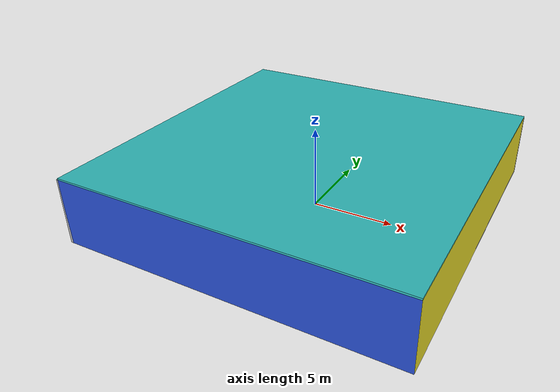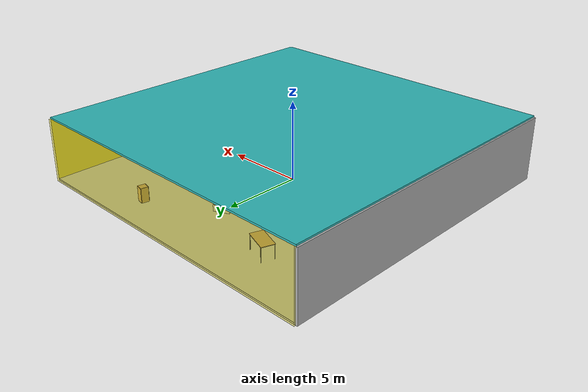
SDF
<sdf version="1.4">
 <world name="default">
  <physics type="ode">
   <max_step_size>0.001</max_step_size>
   <real_time_factor>1</real_time_factor>
   <real_time_update_rate>1000</real_time_update_rate>
   <gravity>0 0 -9.8</gravity>
  </physics>
  <scene><ambient>0.4 0.4 0.4 1</ambient><background>0.7 0.7 0.7 1</background><shadows>1</shadows></scene>
  <model name="Surrounding">
   <static>1</static>
   <link name="Ceiling">
    <collision name="Ceiling_Collision"><geometry><box><size>20 20 0.1</size></box></geometry></collision>
    <visual name="Ceiling_Visual">
     <geometry><box><size>20 20 0.1</size></box></geometry>
     <material>
      <script><uri>file://media/materials/scripts/gazebo.material</uri><name>Gazebo/Turquoise</name></script>
     </material>
    </visual>
    <pose>0 0 4.05 0 0 0</pose>
   </link>
   <link name="Wall_South">
    <collision name="Wall_South_Collision">
     <geometry><box><size>20 0 4</size></box></geometry>
     <pose>0 0 2 0 -0 0</pose>
    </collision>
    <visual name="Wall_South_Visual">
     <pose>0 0 2 0 -0 0</pose>
     <geometry><box><size>20 0 4</size></box></geometry>
     <material>
      <script><uri>file://media/materials/scripts/gazebo.material</uri><name>Gazebo/Blue</name></script>
     </material>
    </visual>
    <velocity_decay><linear>0</linear><angular>0</angular></velocity_decay>
    <pose>0 -10 0 0 -0 0</pose>
   </link>
   <link name="Wall_East">
    <collision name="Wall_21_Collision">
     <geometry><box><size>20 0 4</size></box></geometry>
     <pose>0 0 2 0 -0 0</pose>
    </collision>
    <visual name="Wall_21_Visual">
     <pose>0 0 2 0 -0 0</pose>
     <geometry><box><size>20 0 4</size></box></geometry>
     <material>
      <script><uri>file://media/materials/scripts/gazebo.material</uri><name>Gazebo/Yellow</name></script>
     </material>
    </visual>
    <velocity_decay><linear>0</linear><angular>0</angular></velocity_decay>
    <pose>10 0 0 0 -0 1.5708</pose>
   </link>
   <link name="Wall_North">
    <collision name="Wall_22_Collision">
     <geometry><box><size>20 0.2 4</size></box></geometry>
     <pose>0 0 2 0 -0 0</pose>
    </collision>
    <visual name="Wall_22_Visual">
     <pose>0 0 2 0 -0 0</pose>
     <geometry><box><size>20 0.2 4</size></box></geometry>
     <material>
      <script>
       <uri>file://media/materials/scripts/gazebo.material</uri>
       <name>Gazebo/YellowTransparent</name>
      </script>
     </material>
    </visual>
    <velocity_decay><linear>0</linear><angular>0</angular></velocity_decay>
    <pose>0 10 0 0 -0 0</pose>
   </link>
   <link name="Wall_West">
    <collision name="Wall_23_Collision">
     <geometry><box><size>20 0.2 4</size></box></geometry>
     <pose>0 0 2 0 -0 0</pose>
    </collision>
    <visual name="Wall_23_Visual">
     <pose>0 0 2 0 -0 0</pose>
     <geometry><box><size>20 0.2 4</size></box></geometry>
     <material>
      <script><uri>file://media/materials/scripts/gazebo.material</uri><name>Gazebo/Pioneer2Body</name></script>
     </material>
    </visual>
    <velocity_decay><linear>0</linear><angular>0</angular></velocity_decay>
    <pose>-10 0 0 0 0 -1.5708</pose>
   </link>
   <link name="Ground_link">
    <collision name="collision">
     <pose>0 0 .05 0 -0 0</pose>
     <geometry><box><size>20 20 0.1</size></box></geometry>
    </collision>
    <visual name="visual">
     <pose>0 0 .05 0 -0 0</pose>
     <geometry><box><size>20 20 0.1</size></box></geometry>
     <material>
      <script><uri>file://media/materials/scripts/gazebo.material</uri><name>Gazebo/PioneerBody</name></script>
     </material>
    </visual>
   </link>
   <static>1</static>
  </model>
  <spherical_coordinates>
   <surface_model>EARTH_WGS84</surface_model>
   <latitude_deg>0</latitude_deg>
   <longitude_deg>0</longitude_deg>
   <elevation>0</elevation>
   <heading_deg>0</heading_deg>
  </spherical_coordinates>
  <light name="lightball_0" type="diffuse">
   <diffuse>0.8 0.8 0.8 1</diffuse>
   <specular>0.2 0.2 0.2 1</specular>
   <attenuation>
    <range>100</range>
    <constant>0.7</constant>
    <linear>0.01</linear>
    <quadratic>0.001</quadratic>
   </attenuation>
   <direction>-0.5 0.1 -0.9</direction>
   <pose>-3.90829510214 8.8929952788 0.684272395411 0 0 0</pose>
  </light>
  <light name="lightball_1" type="diffuse">
   <diffuse>0.8 0.8 0.8 1</diffuse>
   <specular>0.2 0.2 0.2 1</specular>
   <attenuation>
    <range>100</range>
    <constant>0.7</constant>
    <linear>0.01</linear>
    <quadratic>0.001</quadratic>
   </attenuation>
   <direction>-0.5 0.1 -0.9</direction>
   <pose>5.52592560138 7.43412039257 3.45479604994 0 0 0</pose>
  </light>
  <light name="lightball_2" type="diffuse">
   <diffuse>0.8 0.8 0.8 1</diffuse>
   <specular>0.2 0.2 0.2 1</specular>
   <attenuation>
    <range>100</range>
    <constant>0.7</constant>
    <linear>0.01</linear>
    <quadratic>0.001</quadratic>
   </attenuation>
   <direction>-0.5 0.1 -0.9</direction>
   <pose>2.57272350137 -1.21020157831 3.55098699392 0 0 0</pose>
  </light>
  <light name="lightball_3" type="diffuse">
   <diffuse>0.8 0.8 0.8 1</diffuse>
   <specular>0.2 0.2 0.2 1</specular>
   <attenuation>
    <range>100</range>
    <constant>0.7</constant>
    <linear>0.01</linear>
    <quadratic>0.001</quadratic>
   </attenuation>
   <direction>-0.5 0.1 -0.9</direction>
   <pose>8.82484682886 -3.92666373107 0.696120581646 0 0 0</pose>
  </light>
  <light name="lightball_4" type="diffuse">
   <diffuse>0.8 0.8 0.8 1</diffuse>
   <specular>0.2 0.2 0.2 1</specular>
   <attenuation>
    <range>100</range>
    <constant>0.7</constant>
    <linear>0.01</linear>
    <quadratic>0.001</quadratic>
   </attenuation>
   <direction>-0.5 0.1 -0.9</direction>
   <pose>9.97863925174 -6.83643784371 3.87731429779 0 0 0</pose>
  </light>
  <light name="lightball_5" type="diffuse">
   <diffuse>0.8 0.8 0.8 1</diffuse>
   <specular>0.2 0.2 0.2 1</specular>
   <attenuation>
    <range>100</range>
    <constant>0.7</constant>
    <linear>0.01</linear>
    <quadratic>0.001</quadratic>
   </attenuation>
   <direction>-0.5 0.1 -0.9</direction>
   <pose>-9.64819114164 0.40913215402 1.44161468347 0 0 0</pose>
  </light>
  <light name="lightball_6" type="diffuse">
   <diffuse>0.8 0.8 0.8 1</diffuse>
   <specular>0.2 0.2 0.2 1</specular>
   <attenuation>
    <range>100</range>
    <constant>0.7</constant>
    <linear>0.01</linear>
    <quadratic>0.001</quadratic>
   </attenuation>
   <direction>-0.5 0.1 -0.9</direction>
   <pose>-3.61638931924 -8.80670254552 2.42357728295 0 0 0</pose>
  </light>
  <light name="lightball_7" type="diffuse">
   <diffuse>0.8 0.8 0.8 1</diffuse>
   <specular>0.2 0.2 0.2 1</specular>
   <attenuation>
    <range>100</range>
    <constant>0.7</constant>
    <linear>0.01</linear>
    <quadratic>0.001</quadratic>
   </attenuation>
   <direction>-0.5 0.1 -0.9</direction>
   <pose>6.20510861408 7.3120661506 1.44758431289 0 0 0</pose>
  </light>
  <light name="lightball_8" type="diffuse">
   <diffuse>0.8 0.8 0.8 1</diffuse>
   <specular>0.2 0.2 0.2 1</specular>
   <attenuation>
    <range>100</range>
    <constant>0.7</constant>
    <linear>0.01</linear>
    <quadratic>0.001</quadratic>
   </attenuation>
   <direction>-0.5 0.1 -0.9</direction>
   <pose>-0.418536883477 0.0168958895984 1.15679683972 0 0 0</pose>
  </light>
  <light name="lightball_9" type="diffuse">
   <diffuse>0.8 0.8 0.8 1</diffuse>
   <specular>0.2 0.2 0.2 1</specular>
   <attenuation>
    <range>100</range>
    <constant>0.7</constant>
    <linear>0.01</linear>
    <quadratic>0.001</quadratic>
   </attenuation>
   <direction>-0.5 0.1 -0.9</direction>
   <pose>7.68609952293 2.04201240585 1.67237838851 0 0 0</pose>
  </light>
  <light name="lightball_10" type="diffuse">
   <diffuse>0.8 0.8 0.8 1</diffuse>
   <specular>0.2 0.2 0.2 1</specular>
   <attenuation>
    <range>100</range>
    <constant>0.7</constant>
    <linear>0.01</linear>
    <quadratic>0.001</quadratic>
   </attenuation>
   <direction>-0.5 0.1 -0.9</direction>
   <pose>-7.11574685512 6.60635892674 3.28487925718 0 0 0</pose>
  </light>
  <light name="lightball_11" type="diffuse">
   <diffuse>0.8 0.8 0.8 1</diffuse>
   <specular>0.2 0.2 0.2 1</specular>
   <attenuation>
    <range>100</range>
    <constant>0.7</constant>
    <linear>0.01</linear>
    <quadratic>0.001</quadratic>
   </attenuation>
   <direction>-0.5 0.1 -0.9</direction>
   <pose>-5.45135656263 -7.5939800554 1.77198188001 0 0 0</pose>
  </light>
  <light name="lightball_12" type="diffuse">
   <diffuse>0.8 0.8 0.8 1</diffuse>
   <specular>0.2 0.2 0.2 1</specular>
   <attenuation>
    <range>100</range>
    <constant>0.7</constant>
    <linear>0.01</linear>
    <quadratic>0.001</quadratic>
   </attenuation>
   <direction>-0.5 0.1 -0.9</direction>
   <pose>5.10940640322 6.84204527901 2.95977044408 0 0 0</pose>
  </light>
  <include>
   <uri>model://textured_shapes</uri>
   <pose>-7.41090330089 -7.36298597941 0 0 0 1.26772671381</pose>
  </include>
  <include>
   <uri>model://textured_shapes</uri>
   <pose>-5.03284204693 -6.98157300866 0 0 0 1.76315947266</pose>
  </include>
  <include><uri>model://table</uri><pose>-4.9246086107 7.18588763209 0 0 0 2.79496801185</pose></include>
  <include>
   <uri>model://construction_cone</uri>
   <pose>-1.80724069616 -5.20729883927 0 0 0 1.88871803627</pose>
  </include>
  <include>
   <uri>model://textured_shapes</uri>
   <pose>-1.34356741437 4.76624621462 0 0 0 2.00066953767</pose>
  </include>
  <include><uri>model://cabinet</uri><pose>4.01083511067 8.02927551428 0 0 0 2.93722980011</pose></include>
 </world>
</sdf>

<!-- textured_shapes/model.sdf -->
<sdf version="1.6">
  <model name="textured_shapes">
    <pose>0 0 0.5 0 0 0</pose>
    <link name="box">
      <pose>0 -1.5 0 0 0 0</pose>
      <collision name="collision">
        <geometry>
          <box>
            <size>1 1 1</size>
          </box>
        </geometry>
      </collision>
      <visual name="visual">
        <geometry>
          <box>
            <size>1 1 1</size>
          </box>
        </geometry>
        <material>
          <script>
            <uri>model://../model_source/models/textured_shapes/materials/scripts</uri>
            <uri>model://../model_source/models/textured_shapes/materials/textures</uri>
            <name>TexturedShape/Squares</name>
          </script>
        </material>
      </visual>
    </link>
    <link name="sphere">
      <collision name="collision">
        <geometry>
          <sphere>
            <radius>0.5</radius>
          </sphere>
        </geometry>
      </collision>
      <visual name="visual">
        <geometry>
          <sphere>
            <radius>0.5</radius>
          </sphere>
        </geometry>
        <material>
          <script>
            <uri>model://../model_source/models/textured_shapes/materials/scripts</uri>
            <uri>model://../model_source/models/textured_shapes/materials/textures</uri>
            <name>TexturedShape/Squares</name>
          </script>
        </material>
      </visual>
    </link>
    <link name="cylinder">
      <pose>0 1.5 0 0 0 0</pose>
      <collision name="collision">
        <geometry>
          <cylinder>
            <radius>0.5</radius>
            <length>1</length>
          </cylinder>
        </geometry>
      </collision>
      <visual name="visual">
        <geometry>
          <cylinder>
            <radius>0.5</radius>
            <length>1</length>
          </cylinder>
        </geometry>
        <material>
          <script>
            <uri>model://../model_source/models/textured_shapes/materials/scripts</uri>
            <uri>model://../model_source/models/textured_shapes/materials/textures</uri>
            <name>TexturedShape/Squares</name>
          </script>
        </material>
      </visual>
    </link>
  </model>
</sdf>

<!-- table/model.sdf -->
<sdf version="1.5">
  <model name="table">
    <static>true</static>
    <link name="link">
      <collision name="surface">
        <pose>0 0 1.0 0 0 0</pose>
        <geometry>
          <box>
            <size>1.5 0.8 0.03</size>
          </box>
        </geometry>
        <surface>
          <friction>
            <ode>
              <mu>0.6</mu>
              <mu2>0.6</mu2>
            </ode>
          </friction>
        </surface>
      </collision>
      <visual name="visual1">
        <pose>0 0 1.0 0 0 0</pose>
        <geometry>
          <box>
            <size>1.5 0.8 0.03</size>
          </box>
        </geometry>
        <material>
          <script>
            <uri>model://media/materials/scripts/gazebo.material</uri>
            <name>Gazebo/Wood</name>
          </script>
        </material>
      </visual>
      <collision name="front_left_leg">
        <pose>0.68 0.38 0.5 0 0 0</pose>
        <geometry>
          <cylinder>
            <radius>0.02</radius>
            <length>1.0</length>
          </cylinder>
        </geometry>
      </collision>
      <visual name="front_left_leg">
        <pose>0.68 0.38 0.5 0 0 0</pose>
        <geometry>
          <cylinder>
            <radius>0.02</radius>
            <length>1.0</length>
          </cylinder>
        </geometry>
        <material>
          <script>
            <uri>model://media/materials/scripts/gazebo.material</uri>
            <name>Gazebo/Grey</name>
          </script>
        </material>
      </visual>
      <collision name="front_right_leg">
        <pose>0.68 -0.38 0.5 0 0 0</pose>
        <geometry>
          <cylinder>
            <radius>0.02</radius>
            <length>1.0</length>
          </cylinder>
        </geometry>
      </collision>
      <visual name="front_right_leg">
        <pose>0.68 -0.38 0.5 0 0 0</pose>
        <geometry>
          <cylinder>
            <radius>0.02</radius>
            <length>1.0</length>
          </cylinder>
        </geometry>
        <material>
          <script>
            <uri>model://media/materials/scripts/gazebo.material</uri>
            <name>Gazebo/Grey</name>
          </script>
        </material>
      </visual>
      <collision name="back_right_leg">
        <pose>-0.68 -0.38 0.5 0 0 0</pose>
        <geometry>
          <cylinder>
            <radius>0.02</radius>
            <length>1.0</length>
          </cylinder>
        </geometry>
      </collision>
      <visual name="back_right_leg">
        <pose>-0.68 -0.38 0.5 0 0 0</pose>
        <geometry>
          <cylinder>
            <radius>0.02</radius>
            <length>1.0</length>
          </cylinder>
        </geometry>
        <material>
          <script>
            <uri>model://media/materials/scripts/gazebo.material</uri>
            <name>Gazebo/Grey</name>
          </script>
        </material>
      </visual>
      <collision name="back_left_leg">
        <pose>-0.68 0.38 0.5 0 0 0</pose>
        <geometry>
          <cylinder>
            <radius>0.02</radius>
            <length>1.0</length>
          </cylinder>
        </geometry>
      </collision>
      <visual name="back_left_leg">
        <pose>-0.68 0.38 0.5 0 0 0</pose>
        <geometry>
          <cylinder>
            <radius>0.02</radius>
            <length>1.0</length>
          </cylinder>
        </geometry>
        <material>
          <script>
            <uri>model://media/materials/scripts/gazebo.material</uri>
            <name>Gazebo/Grey</name>
          </script>
        </material>
      </visual>
    </link>
  </model>
</sdf>

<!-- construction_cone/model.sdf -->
<sdf version="1.5">
  <model name="Construction Cone">
    <link name="link">
      <collision name="collision">
        <geometry>
          <mesh>
            <scale>10 10 10</scale>
            <uri>file://isr-testbed/construction_cone/meshes/construction_cone.dae</uri>
          </mesh>
        </geometry>
      </collision>
      <visual name="visual">
        <geometry>
          <mesh>
            <scale>10 10 10</scale>
            <uri>file://isr-testbed/construction_cone/meshes/construction_cone.dae</uri>
          </mesh>
        </geometry>
      </visual>
    </link>
  </model>
</sdf>

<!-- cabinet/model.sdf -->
<sdf version="1.5">
  <model name="cabinet">
    <static>true</static>
    <link name="cabinet_bottom_plate">
      <inertial>
        <pose>0 0 -1 0 0 0</pose>
        <inertia>
          <ixx>2.050000</ixx>
          <ixy>0</ixy>
          <ixz>0</ixz>
          <iyy>2.050000</iyy>
          <iyz>0</iyz>
          <izz>2.050000</izz>
        </inertia>
        <mass>25.000000</mass>
      </inertial>
      <collision name="cabinet_bottom_plate_geom">
        <pose>0 0 0.010000 0 0 0</pose>
        <geometry>
          <box>
            <size>0.450000 0.450000 0.020000</size>
          </box>
        </geometry>
      </collision>
      <visual name="cabinet_bottom_plate_geom_visual">
        <pose>0 0 0.010000 0 0 0</pose>
        <geometry>
          <box>
            <size>0.450000 0.450000 0.020000</size>
          </box>
        </geometry>
        <material>
          <script>
            <uri>model://media/materials/scripts/gazebo.material</uri>
            <name>Gazebo/Wood</name>
          </script>
        </material>
      </visual>
      <collision name="cabinet_bottom_plate_geom_cabinet_back_plate">
        <pose>0.235000 0 0.510000 0 0 0</pose>
        <geometry>
          <box>
            <size>0.020000 0.450000 1.020000</size>
          </box>
        </geometry>
      </collision>
      <visual name="cabinet_bottom_plate_geom_cabinet_back_plate_visual">
        <pose>0.235000 0 0.510000 0 0 0</pose>
        <geometry>
          <box>
            <size>0.020000 0.450000 1.020000</size>
          </box>
        </geometry>
        <material>
          <script>
            <uri>model://media/materials/scripts/gazebo.material</uri>
            <name>Gazebo/Wood</name>
          </script>
        </material>
      </visual>
      <collision name="cabinet_bottom_plate_geom_cabinet_left_plate">
        <pose>0 0.235000 0.510000 0 0 0</pose>
        <geometry>
          <box>
            <size>0.450000 0.020000 1.020000</size>
          </box>
        </geometry>
      </collision>
      <visual name="cabinet_bottom_plate_geom_cabinet_left_plate_visual">
        <pose>0 0.235000 0.510000 0 0 0</pose>
        <geometry>
          <box>
            <size>0.450000 0.020000 1.020000</size>
          </box>
        </geometry>
        <material>
          <script>
            <uri>model://media/materials/scripts/gazebo.material</uri>
            <name>Gazebo/Wood</name>
          </script>
        </material>
      </visual>
      <collision name="cabinet_bottom_plate_geom_cabinet_middle_plate">
        <pose>0 0 0.510000 0 0 0</pose>
        <geometry>
          <box>
            <size>0.450000 0.450000 0.020000</size>
          </box>
        </geometry>
      </collision>
      <visual name="cabinet_bottom_plate_geom_cabinet_middle_plate_visual">
        <pose>0 0 0.510000 0 0 0</pose>
        <geometry>
          <box>
            <size>0.450000 0.450000 0.020000</size>
          </box>
        </geometry>
        <material>
          <script>
            <uri>model://media/materials/scripts/gazebo.material</uri>
            <name>Gazebo/Wood</name>
          </script>
        </material>
      </visual>
      <collision name="cabinet_bottom_plate_geom_cabinet_right_plate">
        <pose>0 -0.235000 0.510000 0 0 0</pose>
        <geometry>
          <box>
            <size>0.450000 0.020000 1.020000</size>
          </box>
        </geometry>
      </collision>
      <visual name="cabinet_bottom_plate_geom_cabinet_right_plate_visual">
        <pose>0 -0.235000 0.510000 0 0 0</pose>
        <geometry>
          <box>
            <size>0.450000 0.020000 1.020000</size>
          </box>
        </geometry>
        <material>
          <script>
            <uri>model://media/materials/scripts/gazebo.material</uri>
            <name>Gazebo/Wood</name>
          </script>
        </material>
      </visual>
      <collision name="cabinet_bottom_plate_geom_cabinet_top_plate">
        <pose>0 0 1.010000 0 0 0</pose>
        <geometry>
          <box>
            <size>0.450000 0.450000 0.020000</size>
          </box>
        </geometry>
      </collision>
      <visual name="cabinet_bottom_plate_geom_cabinet_top_plate_visual">
        <pose>0 0 1.010000 0 0 0</pose>
        <geometry>
          <box>
            <size>0.450000 0.450000 0.020000</size>
          </box>
        </geometry>
        <material>
          <script>
            <uri>model://media/materials/scripts/gazebo.material</uri>
            <name>Gazebo/Wood</name>
          </script>
        </material>
      </visual>
    </link>
  </model>
</sdf>
